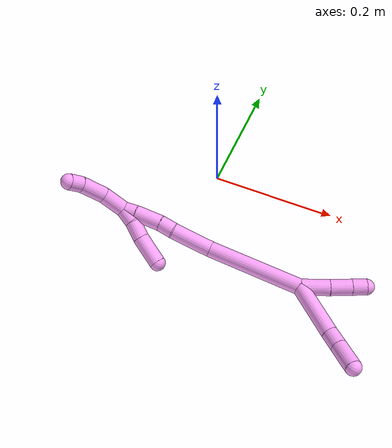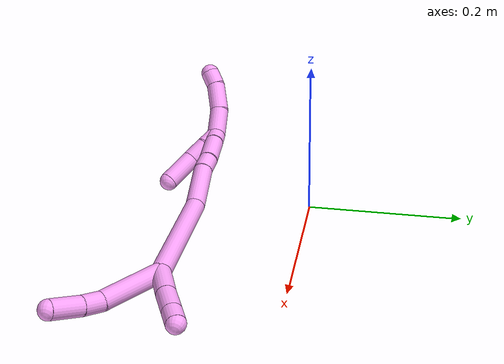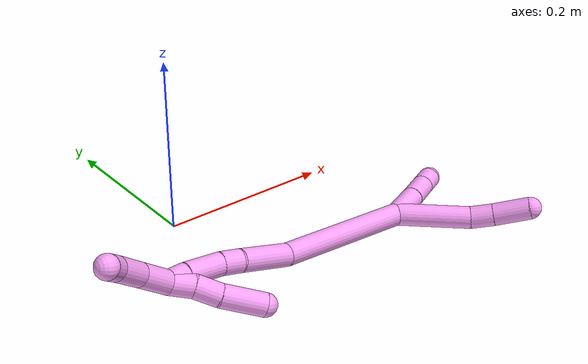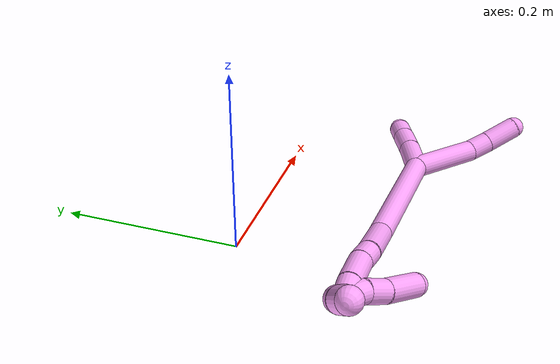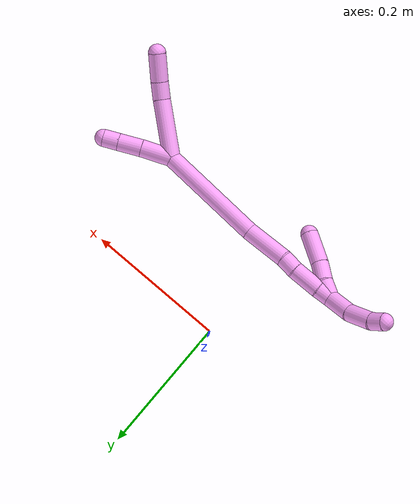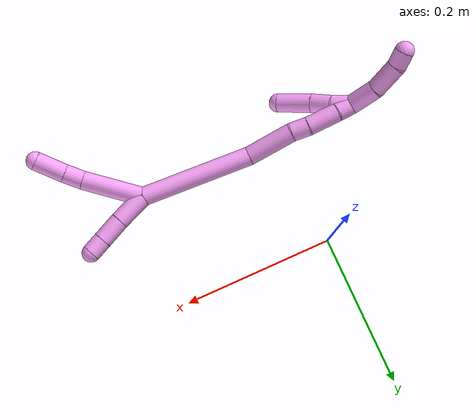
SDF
<sdf version="1.7">
 <world name="default">
  <model name="4">
   <static>0</static>
   <link name="4">
    <collision name="collision-cylinder-e_1_2_8">
     <pose>-0.025199 -0.00712 0.032234 0.217399 -0.651992 -0.073751</pose>
     <geometry><cylinder><radius>0.0125</radius><length>0.083059</length></cylinder></geometry>
     <surface>
      <friction><ode><mu>1.16</mu><mu2>1.16</mu2><slip1>0</slip1><slip2>0</slip2></ode></friction>
      <contact><ode><kp>1e+06</kp><kd>1</kd><max_vel>0</max_vel><min_depth>0.001</min_depth></ode></contact>
     </surface>
    </collision>
    <visual name="visual-cylinder-e_1_2_8">
     <pose>-0.025199 -0.00712 0.032234 0.217399 -0.651992 -0.073751</pose>
     <geometry><cylinder><radius>0.0125</radius><length>0.083059</length></cylinder></geometry>
     <material><ambient>1 0.65098 0.996078 1</ambient></material>
    </visual>
    <collision name="collision-cylinder-e_2_8_9">
     <pose>-0.059968 -0.014267 0.073295 0.002982 -0.825752 -0.001306</pose>
     <geometry><cylinder><radius>0.0125</radius><length>0.026041</length></cylinder></geometry>
     <surface>
      <friction><ode><mu>1.16</mu><mu2>1.16</mu2><slip1>0</slip1><slip2>0</slip2></ode></friction>
      <contact><ode><kp>1e+06</kp><kd>1</kd><max_vel>0</max_vel><min_depth>0.001</min_depth></ode></contact>
     </surface>
    </collision>
    <visual name="visual-cylinder-e_2_8_9">
     <pose>-0.059968 -0.014267 0.073295 0.002982 -0.825752 -0.001306</pose>
     <geometry><cylinder><radius>0.0125</radius><length>0.026041</length></cylinder></geometry>
     <material><ambient>1 0.65098 0.996078 1</ambient></material>
    </visual>
    <collision name="collision-cylinder-e_3_9_6">
     <pose>-0.085623 -0.013137 0.0947 -0.091644 -0.905139 0.044584</pose>
     <geometry><cylinder><radius>0.0125</radius><length>0.040901</length></cylinder></geometry>
     <surface>
      <friction><ode><mu>1.16</mu><mu2>1.16</mu2><slip1>0</slip1><slip2>0</slip2></ode></friction>
      <contact><ode><kp>1e+06</kp><kd>1</kd><max_vel>0</max_vel><min_depth>0.001</min_depth></ode></contact>
     </surface>
    </collision>
    <visual name="visual-cylinder-e_3_9_6">
     <pose>-0.085623 -0.013137 0.0947 -0.091644 -0.905139 0.044584</pose>
     <geometry><cylinder><radius>0.0125</radius><length>0.040901</length></cylinder></geometry>
     <material><ambient>1 0.65098 0.996078 1</ambient></material>
    </visual>
    <collision name="collision-cylinder-e_1_2_10">
     <pose>0.005892 0.008209 0.019688 -0.395031 0.269515 -0.054252</pose>
     <geometry><cylinder><radius>0.0125</radius><length>0.044258</length></cylinder></geometry>
     <surface>
      <friction><ode><mu>1.16</mu><mu2>1.16</mu2><slip1>0</slip1><slip2>0</slip2></ode></friction>
      <contact><ode><kp>1e+06</kp><kd>1</kd><max_vel>0</max_vel><min_depth>0.001</min_depth></ode></contact>
     </surface>
    </collision>
    <visual name="visual-cylinder-e_1_2_10">
     <pose>0.005892 0.008209 0.019688 -0.395031 0.269515 -0.054252</pose>
     <geometry><cylinder><radius>0.0125</radius><length>0.044258</length></cylinder></geometry>
     <material><ambient>1 0.65098 0.996078 1</ambient></material>
    </visual>
    <collision name="collision-cylinder-e_2_10_11">
     <pose>0.017031 0.022764 0.053931 -0.411157 0.319088 -0.067083</pose>
     <geometry><cylinder><radius>0.0125</radius><length>0.033447</length></cylinder></geometry>
     <surface>
      <friction><ode><mu>1.16</mu><mu2>1.16</mu2><slip1>0</slip1><slip2>0</slip2></ode></friction>
      <contact><ode><kp>1e+06</kp><kd>1</kd><max_vel>0</max_vel><min_depth>0.001</min_depth></ode></contact>
     </surface>
    </collision>
    <visual name="visual-cylinder-e_2_10_11">
     <pose>0.017031 0.022764 0.053931 -0.411157 0.319088 -0.067083</pose>
     <geometry><cylinder><radius>0.0125</radius><length>0.033447</length></cylinder></geometry>
     <material><ambient>1 0.65098 0.996078 1</ambient></material>
    </visual>
    <collision name="collision-cylinder-e_3_11_5">
     <pose>0.02572 0.033331 0.078213 -0.409447 0.313976 -0.065709</pose>
     <geometry><cylinder><radius>0.0125</radius><length>0.022294</length></cylinder></geometry>
     <surface>
      <friction><ode><mu>1.16</mu><mu2>1.16</mu2><slip1>0</slip1><slip2>0</slip2></ode></friction>
      <contact><ode><kp>1e+06</kp><kd>1</kd><max_vel>0</max_vel><min_depth>0.001</min_depth></ode></contact>
     </surface>
    </collision>
    <visual name="visual-cylinder-e_3_11_5">
     <pose>0.02572 0.033331 0.078213 -0.409447 0.313976 -0.065709</pose>
     <geometry><cylinder><radius>0.0125</radius><length>0.022294</length></cylinder></geometry>
     <material><ambient>1 0.65098 0.996078 1</ambient></material>
    </visual>
    <collision name="collision-cylinder-e_1_2_12">
     <pose>0.008748 -0.013498 -0.073407 2.95974 0.116679 1.13947</pose>
     <geometry><cylinder><radius>0.0125</radius><length>0.150297</length></cylinder></geometry>
     <surface>
      <friction><ode><mu>1.16</mu><mu2>1.16</mu2><slip1>0</slip1><slip2>0</slip2></ode></friction>
      <contact><ode><kp>1e+06</kp><kd>1</kd><max_vel>0</max_vel><min_depth>0.001</min_depth></ode></contact>
     </surface>
    </collision>
    <visual name="visual-cylinder-e_1_2_12">
     <pose>0.008748 -0.013498 -0.073407 2.95974 0.116679 1.13947</pose>
     <geometry><cylinder><radius>0.0125</radius><length>0.150297</length></cylinder></geometry>
     <material><ambient>1 0.65098 0.996078 1</ambient></material>
    </visual>
    <collision name="collision-cylinder-e_2_12_13">
     <pose>0.014421 -0.026235 -0.178719 -3.11773 -0.096098 2.65519</pose>
     <geometry><cylinder><radius>0.0125</radius><length>0.064123</length></cylinder></geometry>
     <surface>
      <friction><ode><mu>1.16</mu><mu2>1.16</mu2><slip1>0</slip1><slip2>0</slip2></ode></friction>
      <contact><ode><kp>1e+06</kp><kd>1</kd><max_vel>0</max_vel><min_depth>0.001</min_depth></ode></contact>
     </surface>
    </collision>
    <visual name="visual-cylinder-e_2_12_13">
     <pose>0.014421 -0.026235 -0.178719 -3.11773 -0.096098 2.65519</pose>
     <geometry><cylinder><radius>0.0125</radius><length>0.064123</length></cylinder></geometry>
     <material><ambient>1 0.65098 0.996078 1</ambient></material>
    </visual>
    <collision name="collision-cylinder-e_3_13_14">
     <pose>0.012338 -0.025593 -0.222105 3.13116 0.086337 2.9011</pose>
     <geometry><cylinder><radius>0.0125</radius><length>0.023052</length></cylinder></geometry>
     <surface>
      <friction><ode><mu>1.16</mu><mu2>1.16</mu2><slip1>0</slip1><slip2>0</slip2></ode></friction>
      <contact><ode><kp>1e+06</kp><kd>1</kd><max_vel>0</max_vel><min_depth>0.001</min_depth></ode></contact>
     </surface>
    </collision>
    <visual name="visual-cylinder-e_3_13_14">
     <pose>0.012338 -0.025593 -0.222105 3.13116 0.086337 2.9011</pose>
     <geometry><cylinder><radius>0.0125</radius><length>0.023052</length></cylinder></geometry>
     <material><ambient>1 0.65098 0.996078 1</ambient></material>
    </visual>
    <collision name="collision-cylinder-e_4_14_15">
     <pose>0.013558 -0.028287 -0.253954 3.01588 0.011023 0.174698</pose>
     <geometry><cylinder><radius>0.0125</radius><length>0.04106</length></cylinder></geometry>
     <surface>
      <friction><ode><mu>1.16</mu><mu2>1.16</mu2><slip1>0</slip1><slip2>0</slip2></ode></friction>
      <contact><ode><kp>1e+06</kp><kd>1</kd><max_vel>0</max_vel><min_depth>0.001</min_depth></ode></contact>
     </surface>
    </collision>
    <visual name="visual-cylinder-e_4_14_15">
     <pose>0.013558 -0.028287 -0.253954 3.01588 0.011023 0.174698</pose>
     <geometry><cylinder><radius>0.0125</radius><length>0.04106</length></cylinder></geometry>
     <material><ambient>1 0.65098 0.996078 1</ambient></material>
    </visual>
    <collision name="collision-cylinder-e_5_15_1">
     <pose>0.013919 -0.033384 -0.284753 2.90428 0.012565 0.105299</pose>
     <geometry><cylinder><radius>0.0125</radius><length>0.021468</length></cylinder></geometry>
     <surface>
      <friction><ode><mu>1.16</mu><mu2>1.16</mu2><slip1>0</slip1><slip2>0</slip2></ode></friction>
      <contact><ode><kp>1e+06</kp><kd>1</kd><max_vel>0</max_vel><min_depth>0.001</min_depth></ode></contact>
     </surface>
    </collision>
    <visual name="visual-cylinder-e_5_15_1">
     <pose>0.013919 -0.033384 -0.284753 2.90428 0.012565 0.105299</pose>
     <geometry><cylinder><radius>0.0125</radius><length>0.021468</length></cylinder></geometry>
     <material><ambient>1 0.65098 0.996078 1</ambient></material>
    </visual>
    <collision name="collision-cylinder-e_1_1_16">
     <pose>0.009128 -0.029818 -0.313262 -2.8167 -0.252735 1.31883</pose>
     <geometry><cylinder><radius>0.0125</radius><length>0.039401</length></cylinder></geometry>
     <surface>
      <friction><ode><mu>1.16</mu><mu2>1.16</mu2><slip1>0</slip1><slip2>0</slip2></ode></friction>
      <contact><ode><kp>1e+06</kp><kd>1</kd><max_vel>0</max_vel><min_depth>0.001</min_depth></ode></contact>
     </surface>
    </collision>
    <visual name="visual-cylinder-e_1_1_16">
     <pose>0.009128 -0.029818 -0.313262 -2.8167 -0.252735 1.31883</pose>
     <geometry><cylinder><radius>0.0125</radius><length>0.039401</length></cylinder></geometry>
     <material><ambient>1 0.65098 0.996078 1</ambient></material>
    </visual>
    <collision name="collision-cylinder-e_2_16_17">
     <pose>-0.005074 -0.019 -0.348104 -2.8666 -0.489329 2.12944</pose>
     <geometry><cylinder><radius>0.0125</radius><length>0.039471</length></cylinder></geometry>
     <surface>
      <friction><ode><mu>1.16</mu><mu2>1.16</mu2><slip1>0</slip1><slip2>0</slip2></ode></friction>
      <contact><ode><kp>1e+06</kp><kd>1</kd><max_vel>0</max_vel><min_depth>0.001</min_depth></ode></contact>
     </surface>
    </collision>
    <visual name="visual-cylinder-e_2_16_17">
     <pose>-0.005074 -0.019 -0.348104 -2.8666 -0.489329 2.12944</pose>
     <geometry><cylinder><radius>0.0125</radius><length>0.039471</length></cylinder></geometry>
     <material><ambient>1 0.65098 0.996078 1</ambient></material>
    </visual>
    <collision name="collision-cylinder-e_3_17_4">
     <pose>-0.021514 -0.012918 -0.372515 -2.96661 -0.745148 2.70005</pose>
     <geometry><cylinder><radius>0.0125</radius><length>0.021128</length></cylinder></geometry>
     <surface>
      <friction><ode><mu>1.16</mu><mu2>1.16</mu2><slip1>0</slip1><slip2>0</slip2></ode></friction>
      <contact><ode><kp>1e+06</kp><kd>1</kd><max_vel>0</max_vel><min_depth>0.001</min_depth></ode></contact>
     </surface>
    </collision>
    <visual name="visual-cylinder-e_3_17_4">
     <pose>-0.021514 -0.012918 -0.372515 -2.96661 -0.745148 2.70005</pose>
     <geometry><cylinder><radius>0.0125</radius><length>0.021128</length></cylinder></geometry>
     <material><ambient>1 0.65098 0.996078 1</ambient></material>
    </visual>
    <collision name="collision-cylinder-e_1_1_18">
     <pose>0.009515 -0.039321 -0.283704 0.289001 -0.362255 -0.053285</pose>
     <geometry><cylinder><radius>0.0125</radius><length>0.02562</length></cylinder></geometry>
     <surface>
      <friction><ode><mu>1.16</mu><mu2>1.16</mu2><slip1>0</slip1><slip2>0</slip2></ode></friction>
      <contact><ode><kp>1e+06</kp><kd>1</kd><max_vel>0</max_vel><min_depth>0.001</min_depth></ode></contact>
     </surface>
    </collision>
    <visual name="visual-cylinder-e_1_1_18">
     <pose>0.009515 -0.039321 -0.283704 0.289001 -0.362255 -0.053285</pose>
     <geometry><cylinder><radius>0.0125</radius><length>0.02562</length></cylinder></geometry>
     <material><ambient>1 0.65098 0.996078 1</ambient></material>
    </visual>
    <collision name="collision-cylinder-e_2_18_19">
     <pose>0.000268 -0.049148 -0.260815 0.512179 -0.345271 -0.091251</pose>
     <geometry><cylinder><radius>0.0125</radius><length>0.027815</length></cylinder></geometry>
     <surface>
      <friction><ode><mu>1.16</mu><mu2>1.16</mu2><slip1>0</slip1><slip2>0</slip2></ode></friction>
      <contact><ode><kp>1e+06</kp><kd>1</kd><max_vel>0</max_vel><min_depth>0.001</min_depth></ode></contact>
     </surface>
    </collision>
    <visual name="visual-cylinder-e_2_18_19">
     <pose>0.000268 -0.049148 -0.260815 0.512179 -0.345271 -0.091251</pose>
     <geometry><cylinder><radius>0.0125</radius><length>0.027815</length></cylinder></geometry>
     <material><ambient>1 0.65098 0.996078 1</ambient></material>
    </visual>
    <collision name="collision-cylinder-e_3_19_3">
     <pose>-0.012123 -0.063336 -0.22885 0.361565 -0.33636 -0.062046</pose>
     <geometry><cylinder><radius>0.0125</radius><length>0.046565</length></cylinder></geometry>
     <surface>
      <friction><ode><mu>1.16</mu><mu2>1.16</mu2><slip1>0</slip1><slip2>0</slip2></ode></friction>
      <contact><ode><kp>1e+06</kp><kd>1</kd><max_vel>0</max_vel><min_depth>0.001</min_depth></ode></contact>
     </surface>
    </collision>
    <visual name="visual-cylinder-e_3_19_3">
     <pose>-0.012123 -0.063336 -0.22885 0.361565 -0.33636 -0.062046</pose>
     <geometry><cylinder><radius>0.0125</radius><length>0.046565</length></cylinder></geometry>
     <material><ambient>1 0.65098 0.996078 1</ambient></material>
    </visual>
    <collision name="collision-sphere-3">
     <pose>-0.019808 -0.071111 -0.208294 0 -0 0</pose>
     <geometry><sphere><radius>0.0125</radius></sphere></geometry>
     <surface>
      <friction><ode><mu>1.16</mu><mu2>1.16</mu2><slip1>0</slip1><slip2>0</slip2></ode></friction>
      <contact><ode><kp>1e+06</kp><kd>1</kd><max_vel>0</max_vel><min_depth>0.001</min_depth></ode></contact>
     </surface>
    </collision>
    <visual name="visual-sphere-3">
     <pose>-0.019808 -0.071111 -0.208294 0 -0 0</pose>
     <geometry><sphere><radius>0.0125</radius></sphere></geometry>
     <material><ambient>1 0.65098 0.996078 1</ambient></material>
    </visual>
    <collision name="collision-sphere-19">
     <pose>-0.004439 -0.055562 -0.249407 0 -0 0</pose>
     <geometry><sphere><radius>0.0125</radius></sphere></geometry>
     <surface>
      <friction><ode><mu>1.16</mu><mu2>1.16</mu2><slip1>0</slip1><slip2>0</slip2></ode></friction>
      <contact><ode><kp>1e+06</kp><kd>1</kd><max_vel>0</max_vel><min_depth>0.001</min_depth></ode></contact>
     </surface>
    </collision>
    <visual name="visual-sphere-19">
     <pose>-0.004439 -0.055562 -0.249407 0 -0 0</pose>
     <geometry><sphere><radius>0.0125</radius></sphere></geometry>
     <material><ambient>1 0.65098 0.996078 1</ambient></material>
    </visual>
    <collision name="collision-sphere-11">
     <pose>0.022277 0.029111 0.068487 0 -0 0</pose>
     <geometry><sphere><radius>0.0125</radius></sphere></geometry>
     <surface>
      <friction><ode><mu>1.16</mu><mu2>1.16</mu2><slip1>0</slip1><slip2>0</slip2></ode></friction>
      <contact><ode><kp>1e+06</kp><kd>1</kd><max_vel>0</max_vel><min_depth>0.001</min_depth></ode></contact>
     </surface>
    </collision>
    <visual name="visual-sphere-11">
     <pose>0.022277 0.029111 0.068487 0 -0 0</pose>
     <geometry><sphere><radius>0.0125</radius></sphere></geometry>
     <material><ambient>1 0.65098 0.996078 1</ambient></material>
    </visual>
    <collision name="collision-sphere-10">
     <pose>0.011784 0.016417 0.039375 0 -0 0</pose>
     <geometry><sphere><radius>0.0125</radius></sphere></geometry>
     <surface>
      <friction><ode><mu>1.16</mu><mu2>1.16</mu2><slip1>0</slip1><slip2>0</slip2></ode></friction>
      <contact><ode><kp>1e+06</kp><kd>1</kd><max_vel>0</max_vel><min_depth>0.001</min_depth></ode></contact>
     </surface>
    </collision>
    <visual name="visual-sphere-10">
     <pose>0.011784 0.016417 0.039375 0 -0 0</pose>
     <geometry><sphere><radius>0.0125</radius></sphere></geometry>
     <material><ambient>1 0.65098 0.996078 1</ambient></material>
    </visual>
    <collision name="collision-sphere-6">
     <pose>-0.101708 -0.011981 0.107276 0 -0 0</pose>
     <geometry><sphere><radius>0.0125</radius></sphere></geometry>
     <surface>
      <friction><ode><mu>1.16</mu><mu2>1.16</mu2><slip1>0</slip1><slip2>0</slip2></ode></friction>
      <contact><ode><kp>1e+06</kp><kd>1</kd><max_vel>0</max_vel><min_depth>0.001</min_depth></ode></contact>
     </surface>
    </collision>
    <visual name="visual-sphere-6">
     <pose>-0.101708 -0.011981 0.107276 0 -0 0</pose>
     <geometry><sphere><radius>0.0125</radius></sphere></geometry>
     <material><ambient>1 0.65098 0.996078 1</ambient></material>
    </visual>
    <collision name="collision-sphere-9">
     <pose>-0.069539 -0.014293 0.082123 0 -0 0</pose>
     <geometry><sphere><radius>0.0125</radius></sphere></geometry>
     <surface>
      <friction><ode><mu>1.16</mu><mu2>1.16</mu2><slip1>0</slip1><slip2>0</slip2></ode></friction>
      <contact><ode><kp>1e+06</kp><kd>1</kd><max_vel>0</max_vel><min_depth>0.001</min_depth></ode></contact>
     </surface>
    </collision>
    <visual name="visual-sphere-9">
     <pose>-0.069539 -0.014293 0.082123 0 -0 0</pose>
     <geometry><sphere><radius>0.0125</radius></sphere></geometry>
     <material><ambient>1 0.65098 0.996078 1</ambient></material>
    </visual>
    <collision name="collision-sphere-2">
     <geometry><sphere><radius>0.0125</radius></sphere></geometry>
     <surface>
      <friction><ode><mu>1.16</mu><mu2>1.16</mu2><slip1>0</slip1><slip2>0</slip2></ode></friction>
      <contact><ode><kp>1e+06</kp><kd>1</kd><max_vel>0</max_vel><min_depth>0.001</min_depth></ode></contact>
     </surface>
    </collision>
    <visual name="visual-sphere-2">
     <geometry><sphere><radius>0.0125</radius></sphere></geometry>
     <material><ambient>1 0.65098 0.996078 1</ambient></material>
    </visual>
    <collision name="collision-sphere-8">
     <pose>-0.050398 -0.01424 0.064467 0 -0 0</pose>
     <geometry><sphere><radius>0.0125</radius></sphere></geometry>
     <surface>
      <friction><ode><mu>1.16</mu><mu2>1.16</mu2><slip1>0</slip1><slip2>0</slip2></ode></friction>
      <contact><ode><kp>1e+06</kp><kd>1</kd><max_vel>0</max_vel><min_depth>0.001</min_depth></ode></contact>
     </surface>
    </collision>
    <visual name="visual-sphere-8">
     <pose>-0.050398 -0.01424 0.064467 0 -0 0</pose>
     <geometry><sphere><radius>0.0125</radius></sphere></geometry>
     <material><ambient>1 0.65098 0.996078 1</ambient></material>
    </visual>
    <collision name="collision-sphere-5">
     <pose>0.029162 0.037552 0.087939 0 -0 0</pose>
     <geometry><sphere><radius>0.0125</radius></sphere></geometry>
     <surface>
      <friction><ode><mu>1.16</mu><mu2>1.16</mu2><slip1>0</slip1><slip2>0</slip2></ode></friction>
      <contact><ode><kp>1e+06</kp><kd>1</kd><max_vel>0</max_vel><min_depth>0.001</min_depth></ode></contact>
     </surface>
    </collision>
    <visual name="visual-sphere-5">
     <pose>0.029162 0.037552 0.087939 0 -0 0</pose>
     <geometry><sphere><radius>0.0125</radius></sphere></geometry>
     <material><ambient>1 0.65098 0.996078 1</ambient></material>
    </visual>
    <collision name="collision-sphere-12">
     <pose>0.017497 -0.026996 -0.146814 0 -0 0</pose>
     <geometry><sphere><radius>0.0125</radius></sphere></geometry>
     <surface>
      <friction><ode><mu>1.16</mu><mu2>1.16</mu2><slip1>0</slip1><slip2>0</slip2></ode></friction>
      <contact><ode><kp>1e+06</kp><kd>1</kd><max_vel>0</max_vel><min_depth>0.001</min_depth></ode></contact>
     </surface>
    </collision>
    <visual name="visual-sphere-12">
     <pose>0.017497 -0.026996 -0.146814 0 -0 0</pose>
     <geometry><sphere><radius>0.0125</radius></sphere></geometry>
     <material><ambient>1 0.65098 0.996078 1</ambient></material>
    </visual>
    <collision name="collision-sphere-13">
     <pose>0.011344 -0.025473 -0.210623 0 -0 0</pose>
     <geometry><sphere><radius>0.0125</radius></sphere></geometry>
     <surface>
      <friction><ode><mu>1.16</mu><mu2>1.16</mu2><slip1>0</slip1><slip2>0</slip2></ode></friction>
      <contact><ode><kp>1e+06</kp><kd>1</kd><max_vel>0</max_vel><min_depth>0.001</min_depth></ode></contact>
     </surface>
    </collision>
    <visual name="visual-sphere-13">
     <pose>0.011344 -0.025473 -0.210623 0 -0 0</pose>
     <geometry><sphere><radius>0.0125</radius></sphere></geometry>
     <material><ambient>1 0.65098 0.996078 1</ambient></material>
    </visual>
    <collision name="collision-sphere-14">
     <pose>0.013332 -0.025713 -0.233588 0 -0 0</pose>
     <geometry><sphere><radius>0.0125</radius></sphere></geometry>
     <surface>
      <friction><ode><mu>1.16</mu><mu2>1.16</mu2><slip1>0</slip1><slip2>0</slip2></ode></friction>
      <contact><ode><kp>1e+06</kp><kd>1</kd><max_vel>0</max_vel><min_depth>0.001</min_depth></ode></contact>
     </surface>
    </collision>
    <visual name="visual-sphere-14">
     <pose>0.013332 -0.025713 -0.233588 0 -0 0</pose>
     <geometry><sphere><radius>0.0125</radius></sphere></geometry>
     <material><ambient>1 0.65098 0.996078 1</ambient></material>
    </visual>
    <collision name="collision-sphere-15">
     <pose>0.013785 -0.030861 -0.274321 0 -0 0</pose>
     <geometry><sphere><radius>0.0125</radius></sphere></geometry>
     <surface>
      <friction><ode><mu>1.16</mu><mu2>1.16</mu2><slip1>0</slip1><slip2>0</slip2></ode></friction>
      <contact><ode><kp>1e+06</kp><kd>1</kd><max_vel>0</max_vel><min_depth>0.001</min_depth></ode></contact>
     </surface>
    </collision>
    <visual name="visual-sphere-15">
     <pose>0.013785 -0.030861 -0.274321 0 -0 0</pose>
     <geometry><sphere><radius>0.0125</radius></sphere></geometry>
     <material><ambient>1 0.65098 0.996078 1</ambient></material>
    </visual>
    <collision name="collision-sphere-1">
     <pose>0.014054 -0.035907 -0.295186 0 -0 0</pose>
     <geometry><sphere><radius>0.0125</radius></sphere></geometry>
     <surface>
      <friction><ode><mu>1.16</mu><mu2>1.16</mu2><slip1>0</slip1><slip2>0</slip2></ode></friction>
      <contact><ode><kp>1e+06</kp><kd>1</kd><max_vel>0</max_vel><min_depth>0.001</min_depth></ode></contact>
     </surface>
    </collision>
    <visual name="visual-sphere-1">
     <pose>0.014054 -0.035907 -0.295186 0 -0 0</pose>
     <geometry><sphere><radius>0.0125</radius></sphere></geometry>
     <material><ambient>1 0.65098 0.996078 1</ambient></material>
    </visual>
    <collision name="collision-sphere-18">
     <pose>0.004975 -0.042735 -0.272222 0 -0 0</pose>
     <geometry><sphere><radius>0.0125</radius></sphere></geometry>
     <surface>
      <friction><ode><mu>1.16</mu><mu2>1.16</mu2><slip1>0</slip1><slip2>0</slip2></ode></friction>
      <contact><ode><kp>1e+06</kp><kd>1</kd><max_vel>0</max_vel><min_depth>0.001</min_depth></ode></contact>
     </surface>
    </collision>
    <visual name="visual-sphere-18">
     <pose>0.004975 -0.042735 -0.272222 0 -0 0</pose>
     <geometry><sphere><radius>0.0125</radius></sphere></geometry>
     <material><ambient>1 0.65098 0.996078 1</ambient></material>
    </visual>
    <collision name="collision-sphere-16">
     <pose>0.004202 -0.02373 -0.331339 0 -0 0</pose>
     <geometry><sphere><radius>0.0125</radius></sphere></geometry>
     <surface>
      <friction><ode><mu>1.16</mu><mu2>1.16</mu2><slip1>0</slip1><slip2>0</slip2></ode></friction>
      <contact><ode><kp>1e+06</kp><kd>1</kd><max_vel>0</max_vel><min_depth>0.001</min_depth></ode></contact>
     </surface>
    </collision>
    <visual name="visual-sphere-16">
     <pose>0.004202 -0.02373 -0.331339 0 -0 0</pose>
     <geometry><sphere><radius>0.0125</radius></sphere></geometry>
     <material><ambient>1 0.65098 0.996078 1</ambient></material>
    </visual>
    <collision name="collision-sphere-17">
     <pose>-0.014351 -0.014269 -0.364869 0 -0 0</pose>
     <geometry><sphere><radius>0.0125</radius></sphere></geometry>
     <surface>
      <friction><ode><mu>1.16</mu><mu2>1.16</mu2><slip1>0</slip1><slip2>0</slip2></ode></friction>
      <contact><ode><kp>1e+06</kp><kd>1</kd><max_vel>0</max_vel><min_depth>0.001</min_depth></ode></contact>
     </surface>
    </collision>
    <visual name="visual-sphere-17">
     <pose>-0.014351 -0.014269 -0.364869 0 -0 0</pose>
     <geometry><sphere><radius>0.0125</radius></sphere></geometry>
     <material><ambient>1 0.65098 0.996078 1</ambient></material>
    </visual>
    <collision name="collision-sphere-4">
     <pose>-0.028677 -0.011566 -0.380161 0 -0 0</pose>
     <geometry><sphere><radius>0.0125</radius></sphere></geometry>
     <surface>
      <friction><ode><mu>1.16</mu><mu2>1.16</mu2><slip1>0</slip1><slip2>0</slip2></ode></friction>
      <contact><ode><kp>1e+06</kp><kd>1</kd><max_vel>0</max_vel><min_depth>0.001</min_depth></ode></contact>
     </surface>
    </collision>
    <visual name="visual-sphere-4">
     <pose>-0.028677 -0.011566 -0.380161 0 -0 0</pose>
     <geometry><sphere><radius>0.0125</radius></sphere></geometry>
     <material><ambient>1 0.65098 0.996078 1</ambient></material>
    </visual>
    <inertial>
     <pose>-0.003976 -0.017777 -0.120544 0 -0 0</pose>
     <mass>0.75</mass>
     <inertia>
      <ixx>0.000449</ixx>
      <ixy>0</ixy>
      <ixz>0</ixz>
      <iyy>0.000274</iyy>
      <iyz>0</iyz>
      <izz>6.3e-05</izz>
     </inertia>
    </inertial>
   </link>
   <pose>0.198319 -0.151668 0.014163 1.84137 0.503132 1.66324</pose>
  </model>
 </world>
</sdf>
